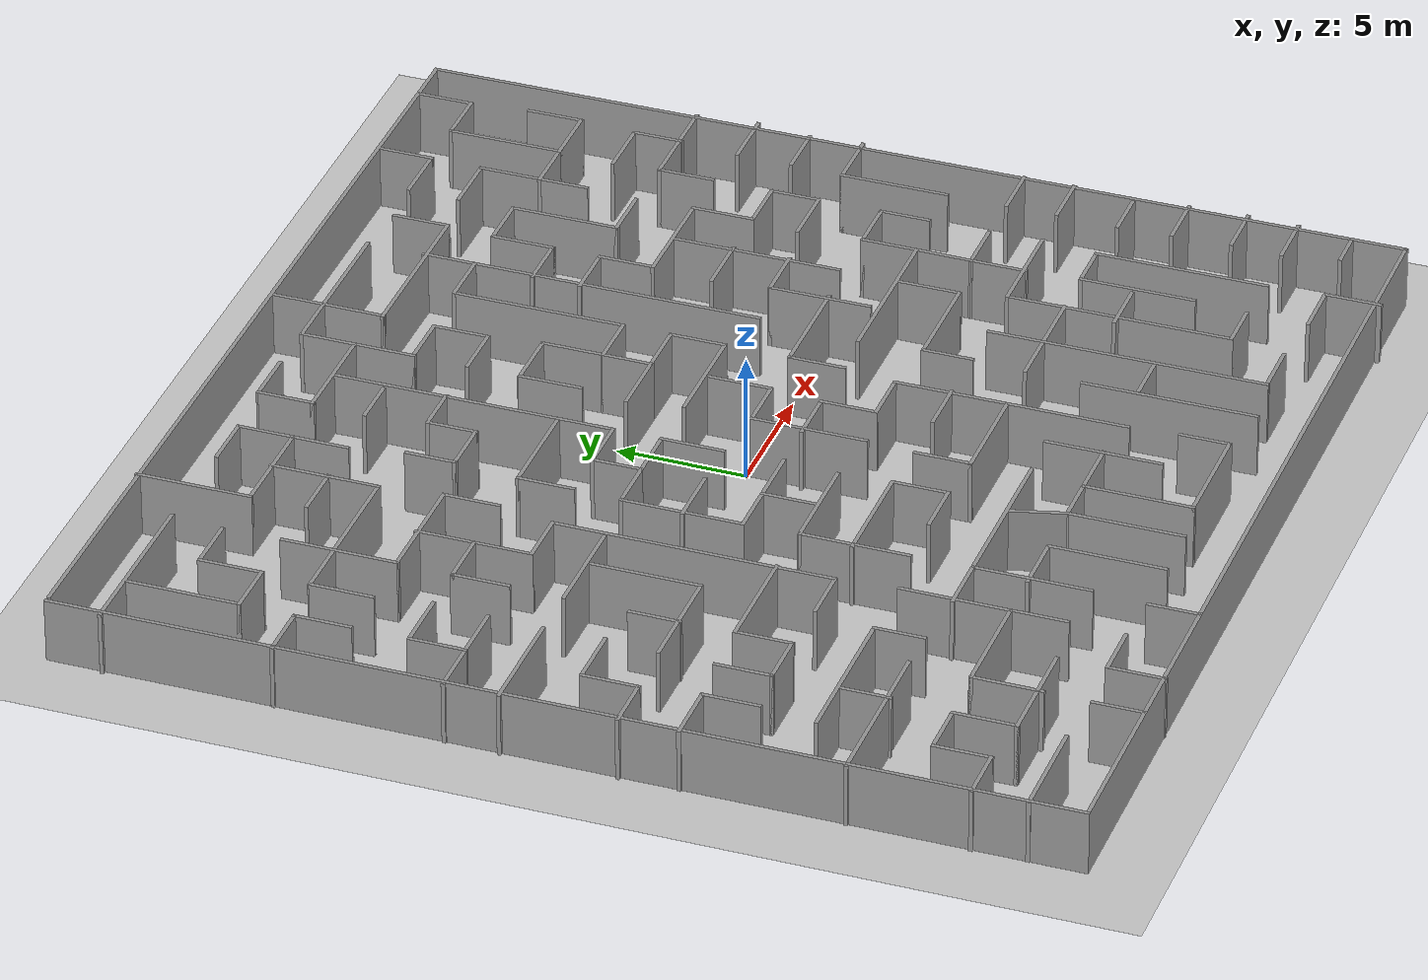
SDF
<?xml version="1.0" ?>

<sdf version="1.6">

  <world name="maze">

    <gravity>0 0 -9.81</gravity>
    <physics name="default_physics" default="0" type="ode">
      <max_step_size>0.005</max_step_size>
      <real_time_factor>0</real_time_factor>
      <real_time_update_rate>0</real_time_update_rate>
    </physics>

    <scene>
      <ambient>0.4 0.4 0.4 1</ambient>
      <background>0.7 0.7 0.7 1</background>
      <shadows>1</shadows>
    </scene>

    <gui>
      <camera name='gzclient_camera'>
        <pose>1.5 -15.5 20 0 0.9 1.6</pose>
      </camera>
    </gui>

    <!-- Light Source -->
    <include>
      <uri>model://sun</uri>
    </include>

    <!-- A ground plane -->
    <include>
      <uri>model://ground_plane</uri>
      <pose>0 0 0 0 0 0</pose>
    </include>

    <include>
      <uri>model://complex_maze</uri>
      <pose> 0 0 0 0 0 0</pose>
    </include>

  </world>
</sdf>
